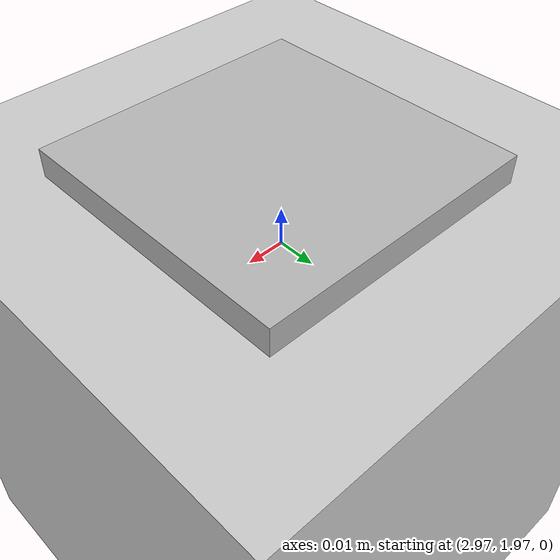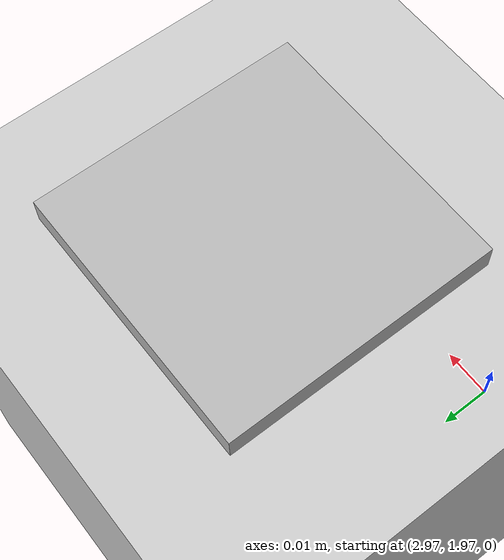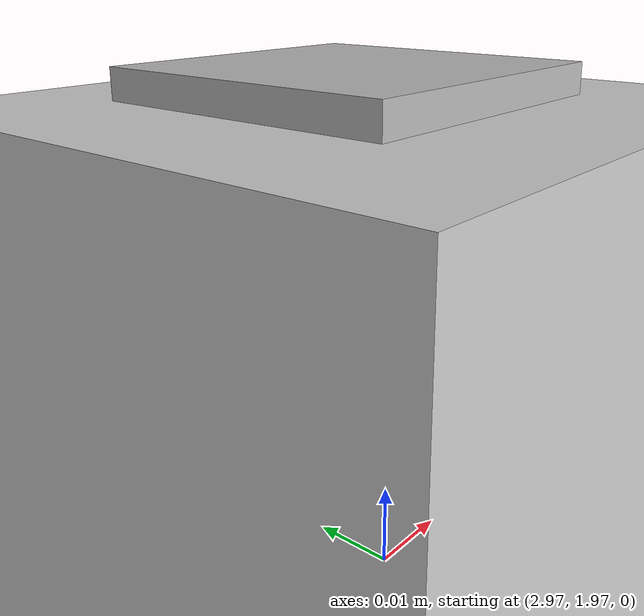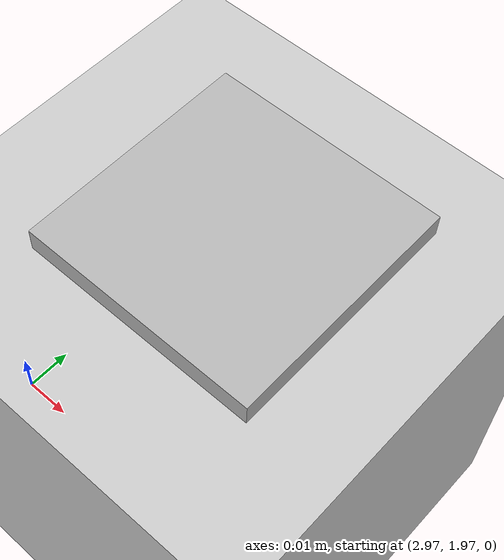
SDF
<?xml version="1.0" ?>
<sdf version="1.10">
    <world name="obstacle_avoidance_2_world">
        <physics name="1ms" type="ignored">
            <max_step_size>0.005</max_step_size>
            <real_time_factor>1.02</real_time_factor>
        </physics>
        <plugin
            filename="gz-sim-physics-system"
            name="gz::sim::systems::Physics">
        </plugin>
        <plugin
            filename="gz-sim-user-commands-system"
            name="gz::sim::systems::UserCommands">
        </plugin>
        <plugin
            filename="gz-sim-scene-broadcaster-system"
            name="gz::sim::systems::SceneBroadcaster">
        </plugin>

        <light type="directional" name="sun">
            <cast_shadows>true</cast_shadows>
            <pose>0 0 10 0 0 0</pose>
            <diffuse>0.8 0.8 0.8 1</diffuse>
            <specular>0.2 0.2 0.2 1</specular>
            <attenuation>
                <range>1000</range>
                <constant>0.9</constant>
                <linear>0.01</linear>
                <quadratic>0.001</quadratic>
            </attenuation>
            <direction>-0.5 0.1 -0.9</direction>
        </light>

        <!-- A puzzlebot robot -->
        <include>
            <uri>/puzzlebot_complete/model.sdf</uri>
            <pose>3 2 0 0 0 -3.14</pose>
        </include>

        <!-- Charge the world-->

        <model name="ground_plane">
            <static>true</static>
            <link name="link">
                <collision name="collision">
                <geometry>
                    <box>
                    <size>20 20 0.1</size>
                    </box>
                </geometry>
                </collision>
                <visual name="visual">
                <geometry>
                    <box>
                    <size>20 20 0.1</size>
                    </box>
                </geometry>
                <material>
                    <ambient>0.8 0.8 0.8 1</ambient>
                    <diffuse>0.8 0.8 0.8 1</diffuse>
                    <specular>0.8 0.8 0.8 1</specular>
                </material>
                </visual>
            </link>
        </model>

    </world>
</sdf>

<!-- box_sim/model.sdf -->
<sdf version='1.4'>
    <model name='box_sim'>
    <static>true</static>

        <link name='link0'>
            <pose>0 0 0.03 0 0 0</pose>

            <visual name='visual'>
                <geometry>
                    <mesh>
                        <uri>./meshes/box_brick.dae</uri>
                    </mesh>
                </geometry>
            </visual>

            <collision name='collision'>
                <pose>0 0 0 0 0 0</pose>
                <geometry>
                    <box>
                        <size>0.05 0.05 0.05</size>
                    </box>
                </geometry>
            </collision>

        </link>

    </model>

</sdf>
